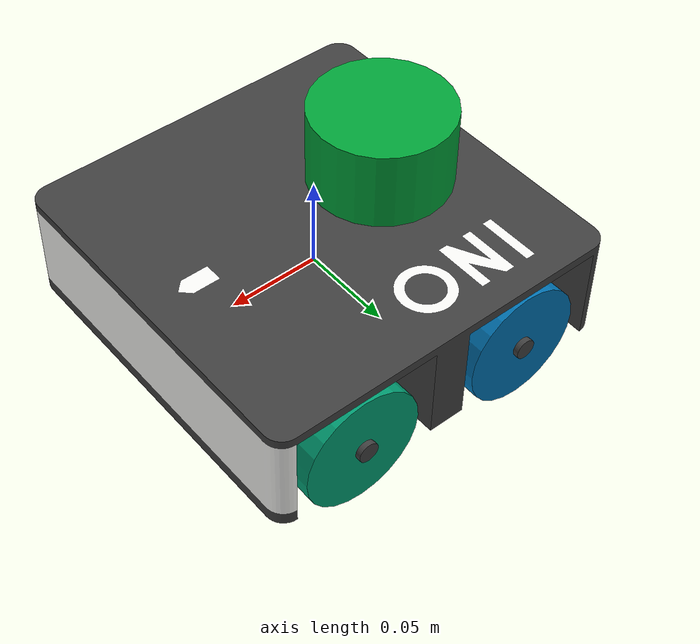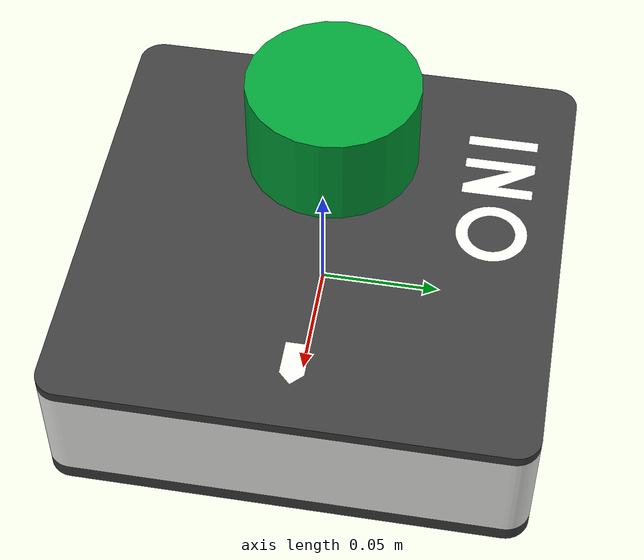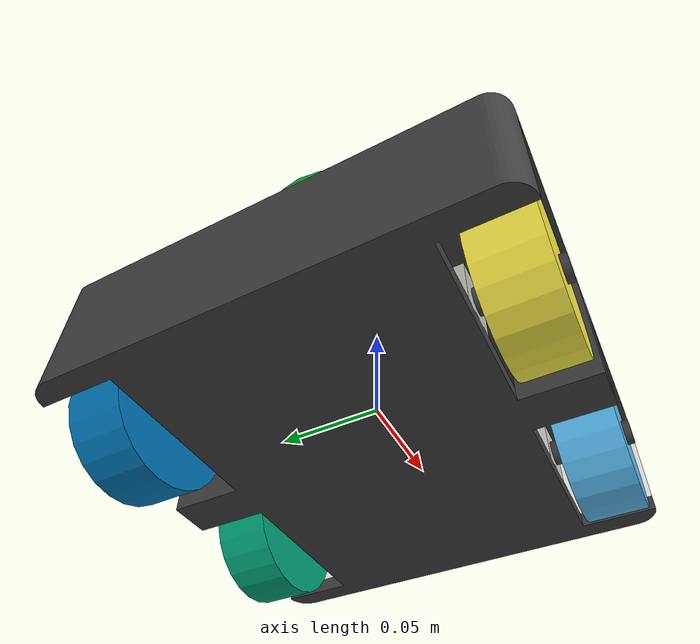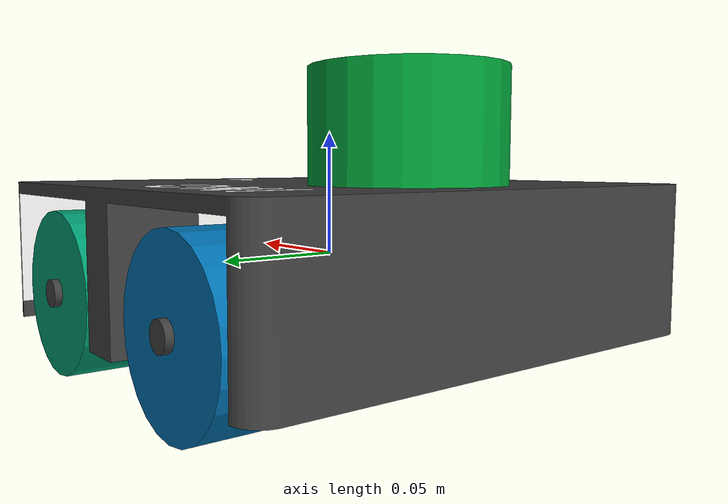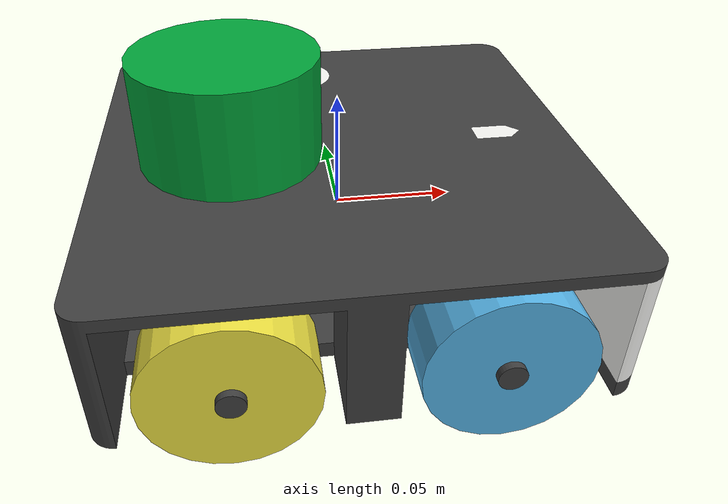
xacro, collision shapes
<?xml version="1.0"?>
<robot xmlns:xacro="http://ros.org/wiki/xacro" name="Oni">
    <xacro:include filename="sensors/imu_sensor.urdf.xacro"/>
    <xacro:include filename="sensors/laser_sensor.urdf.xacro"/>

    <xacro:macro name="omni_drive_controller">
        <gazebo>
            <plugin name="object_controller" filename="libgazebo_ros_planar_move.so">
            <ros>
                <argument>odom:=odom/unfiltered</argument>
            </ros>
            <command_topic>cmd_vel</command_topic>
            <odometry_topic>odom/unfiltered</odometry_topic>
            <odometry_frame>odom</odometry_frame>
            <odometry_rate>20.0</odometry_rate>
            <robot_base_frame>base_footprint</robot_base_frame>
            <publish_odom>true</publish_odom>
            <publish_odom_tf>false</publish_odom_tf>
            </plugin>
        </gazebo>
    </xacro:macro>

    <xacro:macro name="mecanum_wheel" params="side radius width pos_x pos_y pos_z orientation_z mass mesh">
        <link name="${side}_wheel">
        <visual>
            <origin xyz="0 0 0" rpy="0 0 ${orientation_z}"/>
            <geometry>
            <mesh filename="${mesh}"/>
            </geometry>
        </visual>
        <collision>
            <origin xyz="0 0 0" rpy="${pi/2} 0 0"/>
            <geometry>
            <cylinder radius="${radius}" length="${width}"/>
            </geometry>
        </collision>
        <inertial>
            <origin xyz="0 0 0" rpy="0 0 0"/>
            <mass value="${mass}"/>
            <inertia ixx="${(2/5) * mass * (radius * radius)}" ixy="0" ixz="0"
                    iyy="${(2/5) * mass * (radius * radius)}" iyz="0"
                    izz="${(2/5) * mass * (radius * radius)}" />
        </inertial>
        </link>

        <gazebo reference="${side}_wheel">
            <mu1>0.01</mu1>
            <mu2>0.01</mu2>
        </gazebo>

        <joint name="${side}_wheel_to_body" type="continuous">
        <axis xyz="1 0 0" />
        <parent link="body"/>
        <child link="${side}_wheel"/>
        <origin xyz="${pos_x} ${pos_y} ${pos_z}" rpy="0 0 0"/>
        </joint>
    </xacro:macro>

    <link name="body">
        <visual>
            <origin xyz="0 0 0" rpy="0 0 -${pi/2}"/>
            <geometry>
                <mesh filename="file:///$(find oni_gazebo)/oni_description/meshes/body_OC.dae" />
            </geometry>
        </visual>
        <collision>
            <origin xyz="0 0 0" rpy="0 0 -${pi/2}"/>
            <geometry>
                <mesh filename="file:///$(find oni_gazebo)/oni_description/meshes/body_OC.dae" />
            </geometry>
        </collision>
        <inertial>
            <mass value="0.8"/>
            <origin xyz="0 0 0" rpy="0 0 0" />
            <inertia ixx="0.0029" ixy="0.0" ixz="0.0" iyy="0.0029" iyz="0.0" izz="0.00533"/>
        </inertial>
    </link>

    <xacro:mecanum_wheel
        side="front_right"
        radius="0.033"
        width="0.026"
        pos_x="0.05"
        pos_y="-0.085"
        pos_z="-0.014"
        orientation_z="${pi/2}"
        mass="0.3"
        mesh="file:///$(find oni_gazebo)/oni_description/meshes/fr_wheel.dae"
    />

    <xacro:mecanum_wheel
        side="front_left"
        radius="0.033"
        width="0.026"
        pos_x="0.05"
        pos_y="0.085"
        pos_z="-0.014"
        orientation_z="${-pi/2}"
        mass="0.3"
        mesh="file:///$(find oni_gazebo)/oni_description/meshes/fl_wheel.dae"
    />

    <xacro:mecanum_wheel
        side="back_right"
        radius="0.033"
        width="0.026"
        pos_x="-0.05"
        pos_y="-0.085"
        pos_z="-0.014"
        orientation_z="${pi/2}"
        mass="0.3"
        mesh="file:///$(find oni_gazebo)/oni_description/meshes/fr_wheel.dae"
    />

    <xacro:mecanum_wheel
        side="back_left"
        radius="0.033"
        width="0.026"
        pos_x="-0.05"
        pos_y="0.085"
        pos_z="-0.014"
        orientation_z="${-pi/2}"
        mass="0.3"
        mesh="file:///$(find oni_gazebo)/oni_description/meshes/fl_wheel.dae"
    />

    <xacro:imu_sensor/>

    <xacro:laser_sensor
        update_rate="10"
        ray_count="360"
        min_angle="-3.1416"
        max_angle="3.1416"
        min_range="0.08"
        max_range="12.0"
        frame_id="laser"
        topic_name="scan"
    />

    <xacro:omni_drive_controller/>
</robot>

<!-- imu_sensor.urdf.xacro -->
<robot xmlns:xacro="http://ros.org/wiki/xacro">
    <xacro:macro name="imu_sensor">
        <link name="imu"/>
        <joint name="imu_to_body" type="fixed">
        <parent link="body"/>
        <child link="imu"/>
        <origin xyz="0 0 0" rpy="0 0 0"/>
        </joint>

        <gazebo reference="imu">
            <gravity>true</gravity>
            <sensor name="imu_sensor" type="imu">
                <always_on>true</always_on>
                <update_rate>20</update_rate>
                <visualize>true</visualize>
                <topic>__default_topic__</topic>
                <plugin name="imu_plugin" filename="libgazebo_ros_imu_sensor.so">
                    <ros>
                        <remapping>~/out:=imu/data</remapping>
                    </ros>
                    <topicName>imu/data</topicName>
                    <bodyName>imu_link</bodyName>
                    <updateRateHZ>10.0</updateRateHZ>
                    <gaussianNoise>0.0</gaussianNoise>
                    <xyzOffset>0 0 0</xyzOffset>
                    <rpyOffset>0 0 0</rpyOffset>
                    <frameName>imu</frameName>
                    <initialOrientationAsReference>false</initialOrientationAsReference>
                </plugin>
                <pose>0 0 0 0 0 0</pose>
            </sensor>
        </gazebo>
    </xacro:macro>
</robot>

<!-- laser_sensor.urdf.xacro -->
<robot xmlns:xacro="http://ros.org/wiki/xacro">
    <xacro:property name="M_PI" value="3.1415926535897931" />
    <xacro:macro name="laser_sensor" params="update_rate ray_count min_angle max_angle min_range max_range frame_id topic_name">
        <link name="${frame_id}">
        <visual>
            <origin xyz="0 0 -0.025" rpy="0 0 ${M_PI/2}"/>
            <geometry>
                <mesh filename="file:///$(find oni_gazebo)/oni_description/meshes/rplidar.dae"/>
            </geometry>
            <material name="green">
                <color rgba="0.003 0.639 0.223 1.0"/>
            </material>
        </visual>
        <collision>
            <origin xyz="0.003 -0.003 -0.027" rpy="0 0 ${M_PI/2}"/>
            <geometry>
                <cylinder radius="0.0375" length="0.05"/>
            </geometry>
        </collision>

        <inertial>
            <origin xyz="0 0 0" rpy="0 0 0"/>
            <mass value="0.1"/>
            <inertia ixx="${(2/5) * 0.1 * (0.0375 * 0.0375)}" ixy="0" ixz="0"
                    iyy="${(2/5) * 0.1 * (0.0375 * 0.0375)}" iyz="0"
                    izz="${(2/5) * 0.1 * (0.0375 * 0.0375)}" />
            </inertial>
        </link>

        <gazebo reference="${frame_id}">
        <visual>
            <material>
            <ambient>0.003 0.639 0.223 1.0</ambient>
            <diffuse>0.003 0.639 0.223 1.0</diffuse>
            <specular>0.003 0.639 0.223 1.0</specular>
            <emissive>0.0 0.0 0.0 0.0</emissive>
            </material>
        </visual>
        </gazebo>

        <joint name="${frame_id}_to_body" type="fixed">
            <parent link="body"/>
            <child link="${frame_id}"/>
            <origin xyz="-0.0475 0 0.075" rpy="0 0 0"/>
        </joint>

        <gazebo reference="${frame_id}">
        <sensor type="ray" name="${frame_id}_head_hokuyo_sensor">
            <always_on>true</always_on>
            <update_rate>${update_rate}</update_rate>
            <pose>0 0 0 0 0 0</pose>
            <visualize>false</visualize>
            <ray>
            <scan>
                <horizontal>
                <samples>${ray_count}</samples>
                <resolution>1</resolution>
                <min_angle>${min_angle}</min_angle>
                <max_angle>${max_angle}</max_angle>
                </horizontal>
            </scan>
            <range>
                <min>${min_range}</min>
                <max>${max_range}</max>
                <resolution>0.01</resolution>
            </range>
            </ray>
            <plugin name="${frame_id}_gazebo_ros_head_hokuyo_controller" filename="libgazebo_ros_ray_sensor.so">
            <ros>
                <remapping>~/out:=${topic_name}</remapping>
            </ros>
            <output_type>sensor_msgs/LaserScan</output_type>
            <alwaysOn>true</alwaysOn>
            <updateRate>${update_rate}</updateRate>
            <topicName>${topic_name}</topicName>
            <frame_name>${frame_id}</frame_name>
            <output_type>sensor_msgs/LaserScan</output_type>
            </plugin>
        </sensor>
        </gazebo>
  </xacro:macro>
</robot>
